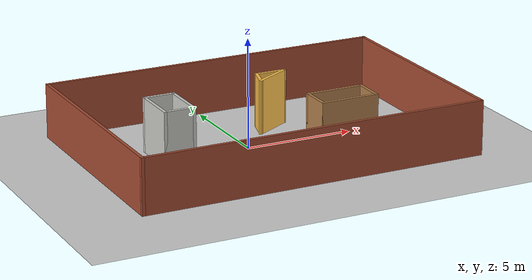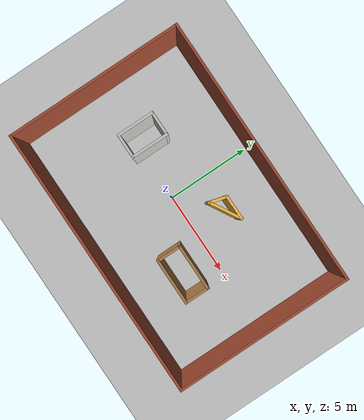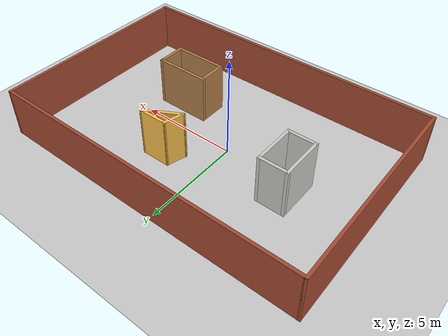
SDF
<sdf version="1.7">
 <world name="default">
  <light name="sun" type="directional">
   <pose>0 0 10 0 -0 0</pose>
   <diffuse>0.8 0.8 0.8 1</diffuse>
   <specular>0.2 0.2 0.2 1</specular>
   <attenuation>
    <range>1000</range>
    <constant>0.9</constant>
    <linear>0.01</linear>
    <quadratic>0.001</quadratic>
   </attenuation>
   <direction>-0.5 0.1 -0.9</direction>
   <spot><inner_angle>0</inner_angle><outer_angle>0</outer_angle><falloff>0</falloff></spot>
  </light>
  <model name="ground_plane">
   <static>1</static>
   <link name="link">
    <collision name="collision">
     <geometry><plane><normal>0 0 1</normal><size>100 100</size></plane></geometry>
     <surface><friction><ode><mu>100</mu><mu2>50</mu2></ode></friction></surface>
    </collision>
    <visual name="visual">
     <cast_shadows>0</cast_shadows>
     <geometry><plane><normal>0 0 1</normal><size>100 100</size></plane></geometry>
     <material>
      <script><uri>file://media/materials/scripts/gazebo.material</uri><name>Gazebo/Grey</name></script>
     </material>
    </visual>
   </link>
  </model>
  <gravity>0 0 -9.8</gravity>
  <magnetic_field>6e-06 2.3e-05 -4.2e-05</magnetic_field>
  <atmosphere type="adiabatic"/>
  <physics type="ode">
   <max_step_size>0.001</max_step_size>
   <real_time_factor>1</real_time_factor>
   <real_time_update_rate>1000</real_time_update_rate>
  </physics>
  <scene><ambient>0.4 0.4 0.4 1</ambient><background>0.7 0.7 0.7 1</background><shadows>1</shadows></scene>
  <audio><device>default</device></audio>
  <spherical_coordinates>
   <surface_model>EARTH_WGS84</surface_model>
   <latitude_deg>0</latitude_deg>
   <longitude_deg>0</longitude_deg>
   <elevation>0</elevation>
   <heading_deg>0</heading_deg>
  </spherical_coordinates>
  <model name="mecung_mau">
   <pose>0.681103 0.011939 0 0 -0 0</pose>
   <link name="Wall_0">
    <collision name="Wall_0_Collision">
     <geometry><box><size>16 0.15 2.5</size></box></geometry>
     <pose>0 0 1.25 0 -0 0</pose>
    </collision>
    <visual name="Wall_0_Visual">
     <pose>0 0 1.25 0 -0 0</pose>
     <geometry><box><size>16 0.15 2.5</size></box></geometry>
     <material>
      <script><uri>file://media/materials/scripts/gazebo.material</uri><name>Gazebo/Bricks</name></script>
      <ambient>1 1 1 1</ambient>
     </material>
     <meta><layer>0</layer></meta>
    </visual>
    <pose>0 5.175 0 0 -0 0</pose>
   </link>
   <link name="Wall_13">
    <collision name="Wall_13_Collision">
     <geometry><box><size>1.5 0.15 2.5</size></box></geometry>
     <pose>0 0 1.25 0 -0 0</pose>
    </collision>
    <visual name="Wall_13_Visual">
     <pose>0 0 1.25 0 -0 0</pose>
     <geometry><box><size>1.5 0.15 2.5</size></box></geometry>
     <material>
      <script><uri>file://media/materials/scripts/gazebo.material</uri><name>Gazebo/Wood</name></script>
      <ambient>1 1 1 1</ambient>
     </material>
     <meta><layer>0</layer></meta>
    </visual>
    <pose>4.30117 -1.76436 0 0 -0 1.5708</pose>
   </link>
   <link name="Wall_14">
    <collision name="Wall_14_Collision">
     <geometry><box><size>2.75 0.15 2.5</size></box></geometry>
     <pose>0 0 1.25 0 -0 0</pose>
    </collision>
    <visual name="Wall_14_Visual">
     <pose>0 0 1.25 0 -0 0</pose>
     <geometry><box><size>2.75 0.15 2.5</size></box></geometry>
     <material>
      <script><uri>file://media/materials/scripts/gazebo.material</uri><name>Gazebo/Wood</name></script>
      <ambient>1 1 1 1</ambient>
     </material>
     <meta><layer>0</layer></meta>
    </visual>
    <pose>3.00117 -1.08936 0 0 -0 3.14159</pose>
   </link>
   <link name="Wall_15">
    <collision name="Wall_15_Collision">
     <geometry><box><size>1.5 0.15 2.5</size></box></geometry>
     <pose>0 0 1.25 0 -0 0</pose>
    </collision>
    <visual name="Wall_15_Visual">
     <pose>0 0 1.25 0 -0 0</pose>
     <geometry><box><size>1.5 0.15 2.5</size></box></geometry>
     <material>
      <script><uri>file://media/materials/scripts/gazebo.material</uri><name>Gazebo/Wood</name></script>
      <ambient>1 1 1 1</ambient>
     </material>
     <meta><layer>0</layer></meta>
    </visual>
    <pose>1.70117 -1.76436 0 0 -0 -1.5708</pose>
   </link>
   <link name="Wall_16">
    <collision name="Wall_16_Collision">
     <geometry><box><size>2.75 0.15 2.5</size></box></geometry>
     <pose>0 0 1.25 0 -0 0</pose>
    </collision>
    <visual name="Wall_16_Visual">
     <pose>0 0 1.25 0 -0 0</pose>
     <geometry><box><size>2.75 0.15 2.5</size></box></geometry>
     <material>
      <script><uri>file://media/materials/scripts/gazebo.material</uri><name>Gazebo/Wood</name></script>
      <ambient>1 1 1 1</ambient>
     </material>
     <meta><layer>0</layer></meta>
    </visual>
    <pose>3.00117 -2.43936 0 0 -0 0</pose>
   </link>
   <link name="Wall_2">
    <collision name="Wall_2_Collision">
     <geometry><box><size>10.5 0.15 2.5</size></box></geometry>
     <pose>0 0 1.25 0 -0 0</pose>
    </collision>
    <visual name="Wall_2_Visual">
     <pose>0 0 1.25 0 -0 0</pose>
     <geometry><box><size>10.5 0.15 2.5</size></box></geometry>
     <material>
      <script><uri>file://media/materials/scripts/gazebo.material</uri><name>Gazebo/Bricks</name></script>
      <ambient>1 1 1 1</ambient>
     </material>
     <meta><layer>0</layer></meta>
    </visual>
    <pose>7.925 0 0 0 -0 -1.5708</pose>
   </link>
   <link name="Wall_26">
    <collision name="Wall_26_Collision">
     <geometry><box><size>2.25 0.15 2.5</size></box></geometry>
     <pose>0 0 1.25 0 -0 0</pose>
    </collision>
    <visual name="Wall_26_Visual">
     <pose>0 0 1.25 0 -0 0</pose>
     <geometry><box><size>2.25 0.15 2.5</size></box></geometry>
     <material>
      <script><uri>file://media/materials/scripts/gazebo.material</uri><name>Gazebo/CeilingTiled</name></script>
      <ambient>0.435294 0.796078 0.67451 1</ambient>
     </material>
     <meta><layer>0</layer></meta>
    </visual>
    <pose>-4.84632 0.538743 0 0 -0 -1.5708</pose>
   </link>
   <link name="Wall_27">
    <collision name="Wall_27_Collision">
     <geometry><box><size>1.5 0.15 2.5</size></box></geometry>
     <pose>0 0 1.25 0 -0 0</pose>
    </collision>
    <visual name="Wall_27_Visual">
     <pose>0 0 1.25 0 -0 0</pose>
     <geometry><box><size>1.5 0.15 2.5</size></box></geometry>
     <material>
      <script><uri>file://media/materials/scripts/gazebo.material</uri><name>Gazebo/CeilingTiled</name></script>
      <ambient>0.435294 0.796078 0.67451 1</ambient>
     </material>
     <meta><layer>0</layer></meta>
    </visual>
    <pose>-4.17132 -0.511257 0 0 -0 0</pose>
   </link>
   <link name="Wall_28">
    <collision name="Wall_28_Collision">
     <geometry><box><size>2.25 0.15 2.5</size></box></geometry>
     <pose>0 0 1.25 0 -0 0</pose>
    </collision>
    <visual name="Wall_28_Visual">
     <pose>0 0 1.25 0 -0 0</pose>
     <geometry><box><size>2.25 0.15 2.5</size></box></geometry>
     <material>
      <script><uri>file://media/materials/scripts/gazebo.material</uri><name>Gazebo/CeilingTiled</name></script>
      <ambient>0.435294 0.796078 0.67451 1</ambient>
     </material>
     <meta><layer>0</layer></meta>
    </visual>
    <pose>-3.49632 0.538743 0 0 -0 1.5708</pose>
   </link>
   <link name="Wall_29">
    <collision name="Wall_29_Collision">
     <geometry><box><size>1.5 0.15 2.5</size></box></geometry>
     <pose>0 0 1.25 0 -0 0</pose>
    </collision>
    <visual name="Wall_29_Visual">
     <pose>0 0 1.25 0 -0 0</pose>
     <geometry><box><size>1.5 0.15 2.5</size></box></geometry>
     <material>
      <script><uri>file://media/materials/scripts/gazebo.material</uri><name>Gazebo/CeilingTiled</name></script>
      <ambient>0.435294 0.796078 0.67451 1</ambient>
     </material>
     <meta><layer>0</layer></meta>
    </visual>
    <pose>-4.17132 1.58874 0 0 -0 3.14159</pose>
   </link>
   <link name="Wall_3">
    <collision name="Wall_3_Collision">
     <geometry><box><size>16 0.15 2.5</size></box></geometry>
     <pose>0 0 1.25 0 -0 0</pose>
    </collision>
    <visual name="Wall_3_Visual">
     <pose>0 0 1.25 0 -0 0</pose>
     <geometry><box><size>16 0.15 2.5</size></box></geometry>
     <material>
      <script><uri>file://media/materials/scripts/gazebo.material</uri><name>Gazebo/Bricks</name></script>
      <ambient>1 1 1 1</ambient>
     </material>
     <meta><layer>0</layer></meta>
    </visual>
    <pose>0 -5.175 0 0 -0 3.14159</pose>
   </link>
   <link name="Wall_38">
    <collision name="Wall_38_Collision">
     <geometry><box><size>1.5 0.15 2.5</size></box></geometry>
     <pose>0 0 1.25 0 -0 0</pose>
    </collision>
    <visual name="Wall_38_Visual">
     <pose>0 0 1.25 0 -0 0</pose>
     <geometry><box><size>1.5 0.15 2.5</size></box></geometry>
     <material>
      <script><uri>file://media/materials/scripts/gazebo.material</uri><name>Gazebo/Grey</name></script>
      <ambient>1 0.764706 0.305882 1</ambient>
     </material>
     <meta><layer>0</layer></meta>
    </visual>
    <pose>1.59958 2.3829 0 0 -0 0</pose>
   </link>
   <link name="Wall_39">
    <collision name="Wall_39_Collision">
     <geometry><box><size>2 0.15 2.5</size></box></geometry>
     <pose>0 0 1.25 0 -0 0</pose>
    </collision>
    <visual name="Wall_39_Visual">
     <pose>0 0 1.25 0 -0 0</pose>
     <geometry><box><size>2 0.15 2.5</size></box></geometry>
     <material>
      <script><uri>file://media/materials/scripts/gazebo.material</uri><name>Gazebo/Grey</name></script>
      <ambient>1 0.764706 0.305882 1</ambient>
     </material>
     <meta><layer>0</layer></meta>
    </visual>
    <pose>1.4735 1.9204 0 0 -0 -2.61799</pose>
   </link>
   <link name="Wall_4">
    <collision name="Wall_4_Collision">
     <geometry><box><size>10.5 0.15 2.5</size></box></geometry>
     <pose>0 0 1.25 0 -0 0</pose>
    </collision>
    <visual name="Wall_4_Visual">
     <pose>0 0 1.25 0 -0 0</pose>
     <geometry><box><size>10.5 0.15 2.5</size></box></geometry>
     <material>
      <script><uri>file://media/materials/scripts/gazebo.material</uri><name>Gazebo/Bricks</name></script>
      <ambient>1 1 1 1</ambient>
     </material>
     <meta><layer>0</layer></meta>
    </visual>
    <pose>-7.925 0 0 0 -0 1.5708</pose>
   </link>
   <link name="Wall_40">
    <collision name="Wall_40_Collision">
     <geometry><box><size>1.10875 0.15 2.5</size></box></geometry>
     <pose>0 0 1.25 0 -0 0</pose>
    </collision>
    <visual name="Wall_40_Visual">
     <pose>0 0 1.25 0 -0 0</pose>
     <geometry><box><size>1.10875 0.15 2.5</size></box></geometry>
     <material>
      <script><uri>file://media/materials/scripts/gazebo.material</uri><name>Gazebo/Grey</name></script>
      <ambient>1 0.764706 0.305882 1</ambient>
     </material>
     <meta><layer>0</layer></meta>
    </visual>
    <pose>0.798503 1.9204 0 0 -0 1.30467</pose>
   </link>
   <static>1</static>
  </model>
 </world>
</sdf>
